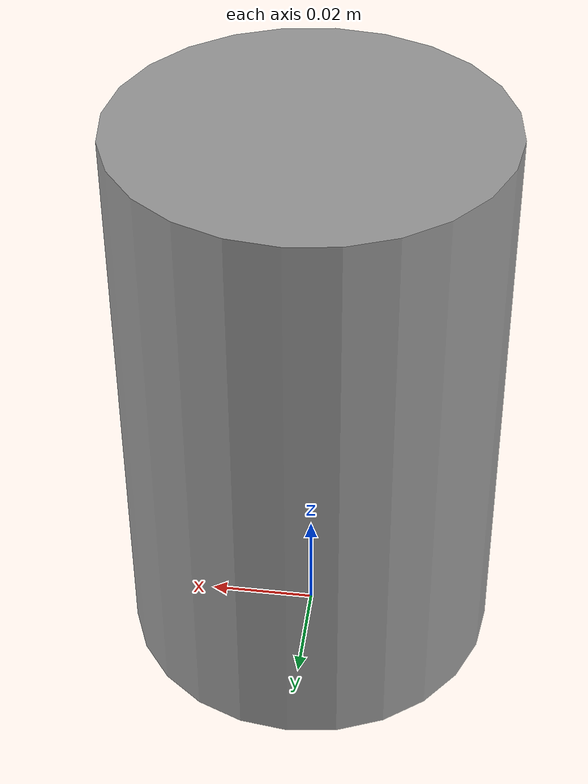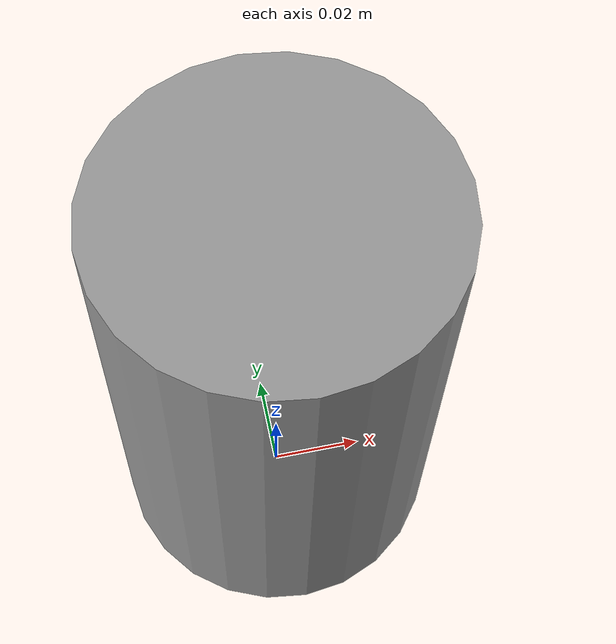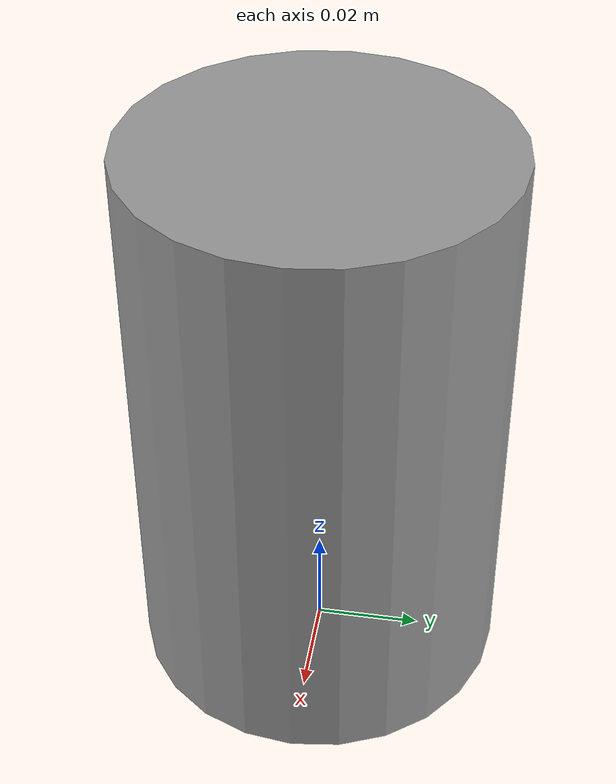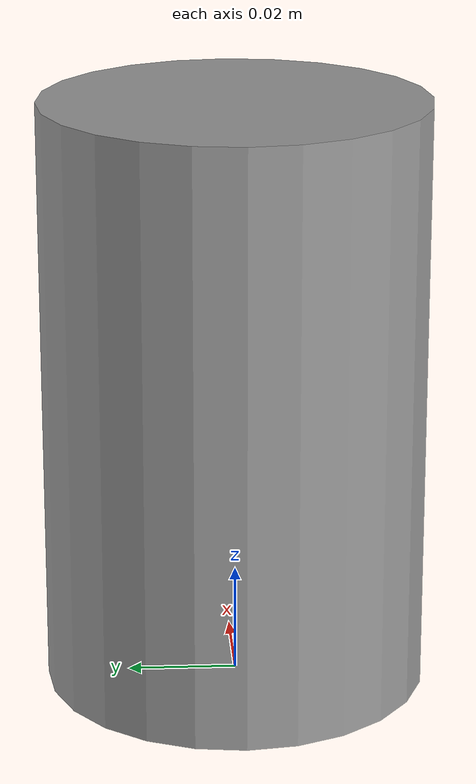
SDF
<?xml version='1.0'?>
<sdf version='1.7'>
    <model name='column'>
        <link name='link_1'>
            <inertial>
                <mass>0.05</mass>
                <inertia>
                    <ixx>0.00225266</ixx>
                    <ixy>0</ixy>
                    <ixz>0</ixz>
                    <iyy>0.00225266</iyy>
                    <iyz>0</iyz>
                    <izz>0.00258456</izz>
                </inertia>
                <pose>0 0 0 0 -0 0</pose>
            </inertial>
            <pose>0 0 0.0545 0 -0 0</pose>
            <gravity>1</gravity>
            <self_collide>0</self_collide>
            <kinematic>0</kinematic>
            <enable_wind>0</enable_wind>
            <visual name='visual'>
                <pose>0 0 0 0 -0 0</pose>
                <geometry>
                    <cylinder>
                        <radius>0.03515</radius>
                        <length>0.109</length>
                    </cylinder>
                </geometry>
                <material>
                    <lighting>1</lighting>
                    <shader type='pixel'>
                        <normal_map>__default__</normal_map>
                    </shader>
                    <ambient>0.6 0.6 0.6 1</ambient>
                    <diffuse>0.6 0.6 0.6 1</diffuse>
                </material>
                <transparency>0</transparency>
                <cast_shadows>1</cast_shadows>
            </visual>
            <collision name='collision'>
                <laser_retro>0</laser_retro>
                <max_contacts>10</max_contacts>
                <pose>0 0 0 0 -0 0</pose>
                <geometry>
                    <cylinder>
                        <radius>0.03515</radius>
                        <length>0.109</length>
                    </cylinder>
                </geometry>
                <surface>
                    <friction>
                        <ode>
                            <mu>1</mu>
                            <mu2>1</mu2>
                            <fdir1>0 0 0</fdir1>
                            <slip1>0</slip1>
                            <slip2>0</slip2>
                        </ode>
                        <torsional>
                            <coefficient>1</coefficient>
                            <patch_radius>0</patch_radius>
                            <surface_radius>0</surface_radius>
                            <use_patch_radius>1</use_patch_radius>
                            <ode>
                                <slip>0</slip>
                            </ode>
                        </torsional>
                    </friction>
                    <bounce>
                        <restitution_coefficient>0</restitution_coefficient>
                        <threshold>1e+06</threshold>
                    </bounce>
                    <contact>
                        <collide_without_contact>0</collide_without_contact>
                        <collide_without_contact_bitmask>1</collide_without_contact_bitmask>
                        <collide_bitmask>1</collide_bitmask>
                        <ode>
                            <soft_cfm>0</soft_cfm>
                            <soft_erp>0.2</soft_erp>
                            <kp>1e+13</kp>
                            <kd>1</kd>
                            <max_vel>0.01</max_vel>
                            <min_depth>0</min_depth>
                        </ode>
                        <bullet>
                            <split_impulse>1</split_impulse>
                            <split_impulse_penetration_threshold>-0.01</split_impulse_penetration_threshold>
                            <soft_cfm>0</soft_cfm>
                            <soft_erp>0.2</soft_erp>
                            <kp>1e+13</kp>
                            <kd>1</kd>
                        </bullet>
                    </contact>
                </surface>
            </collision>
        </link>
        <static>0</static>
        <allow_auto_disable>1</allow_auto_disable>
    </model>
</sdf>
